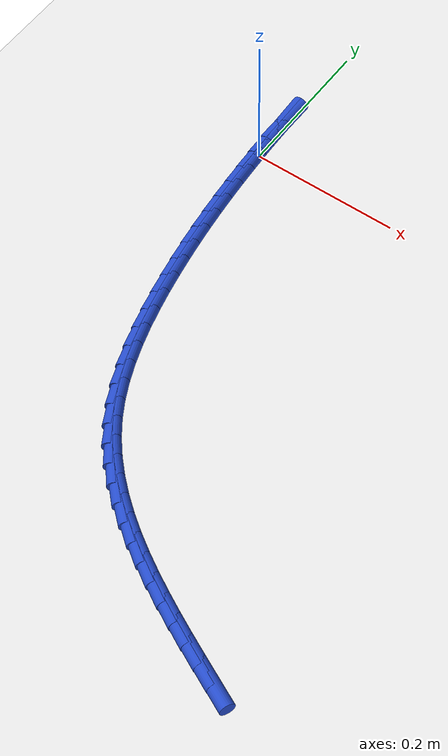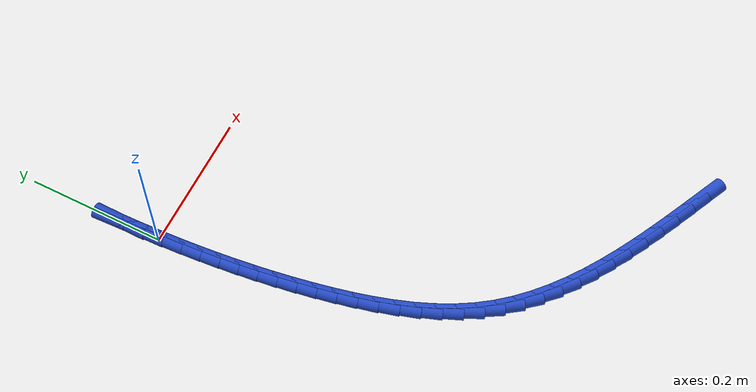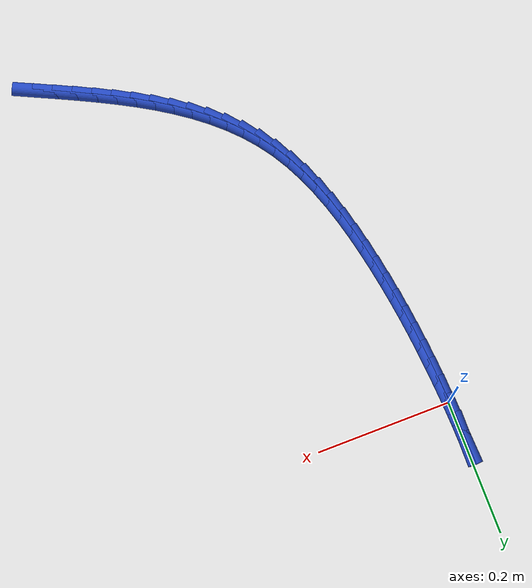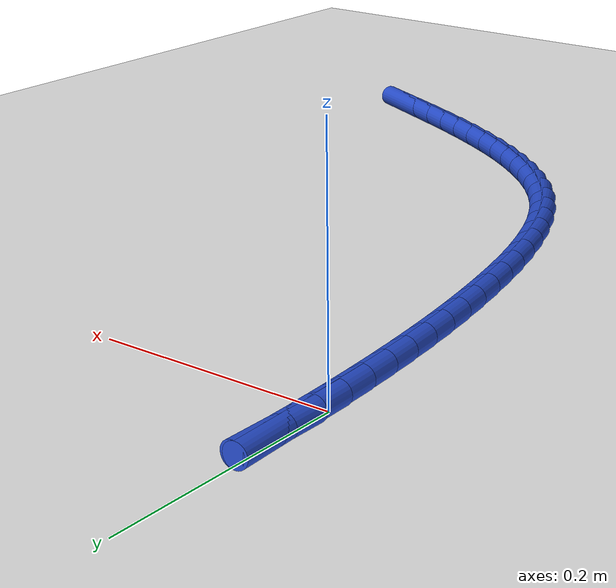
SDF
<sdf version="1.6">
 <world name="default">
  <model name="ground_plane">
   <static>1</static>
   <link name="link">
    <collision name="collision">
     <geometry><plane><normal>0 0 1</normal><size>100 100</size></plane></geometry>
     <surface><friction><ode><mu>100</mu><mu2>50</mu2></ode></friction></surface>
    </collision>
    <visual name="visual">
     <cast_shadows>0</cast_shadows>
     <geometry><plane><normal>0 0 1</normal><size>100 100</size></plane></geometry>
     <material>
      <script><uri>file://media/materials/scripts/gazebo.material</uri><name>Gazebo/WhiteGlow</name></script>
     </material>
    </visual>
   </link>
  </model>
  <model name="line">
   <link name="link_0">
    <pose>2.8189256484623115e-17 4.85722573273506e-17 0.01 0 1.57 -1.5270184267594702</pose>
    <collision name="collision">
     <geometry><cylinder><radius>0.01</radius><length>0.08</length></cylinder></geometry>
    </collision>
    <visual name="visual">
     <material>
      <script><name>Gazebo/Blue</name><uri>file://media/materials/scripts/gazebo.material</uri></script>
     </material>
     <geometry><cylinder><radius>0.01</radius><length>0.08</length></cylinder></geometry>
    </visual>
   </link>
   <link name="link_1">
    <pose>-0.0012457737586339022 0.028438500070601964 0.01 0 1.57 -1.5487521793531875</pose>
    <collision name="collision">
     <geometry><cylinder><radius>0.01</radius><length>0.08</length></cylinder></geometry>
    </collision>
    <visual name="visual">
     <material>
      <script><name>Gazebo/Blue</name><uri>file://media/materials/scripts/gazebo.material</uri></script>
     </material>
     <geometry><cylinder><radius>0.01</radius><length>0.08</length></cylinder></geometry>
    </visual>
   </link>
   <link name="link_2">
    <pose>-0.0018765141941405029 0.05704646804013525 0.01 0 1.57 1.5607097423569645</pose>
    <collision name="collision">
     <geometry><cylinder><radius>0.01</radius><length>0.08</length></cylinder></geometry>
    </collision>
    <visual name="visual">
     <material>
      <script><name>Gazebo/Blue</name><uri>file://media/materials/scripts/gazebo.material</uri></script>
     </material>
     <geometry><cylinder><radius>0.01</radius><length>0.08</length></cylinder></geometry>
    </visual>
   </link>
   <link name="link_251">
    <pose>0.38632357649512 -0.6376956373249678 0.01 0 1.57 -0.4434992929718177</pose>
    <collision name="collision">
     <geometry><cylinder><radius>0.01</radius><length>0.08</length></cylinder></geometry>
    </collision>
    <visual name="visual">
     <material>
      <script><name>Gazebo/Blue</name><uri>file://media/materials/scripts/gazebo.material</uri></script>
     </material>
     <geometry><cylinder><radius>0.01</radius><length>0.08</length></cylinder></geometry>
    </visual>
   </link>
   <link name="link_252">
    <pose>0.36007686523714955 -0.6252268102355137 0.01 0 1.57 -0.45106261564248634</pose>
    <collision name="collision">
     <geometry><cylinder><radius>0.01</radius><length>0.08</length></cylinder></geometry>
    </collision>
    <visual name="visual">
     <material>
      <script><name>Gazebo/Blue</name><uri>file://media/materials/scripts/gazebo.material</uri></script>
     </material>
     <geometry><cylinder><radius>0.01</radius><length>0.08</length></cylinder></geometry>
    </visual>
   </link>
   <link name="link_253">
    <pose>0.3340016185310652 -0.6125968392613319 0.01 0 1.57 -0.4642635062525587</pose>
    <collision name="collision">
     <geometry><cylinder><radius>0.01</radius><length>0.08</length></cylinder></geometry>
    </collision>
    <visual name="visual">
     <material>
      <script><name>Gazebo/Blue</name><uri>file://media/materials/scripts/gazebo.material</uri></script>
     </material>
     <geometry><cylinder><radius>0.01</radius><length>0.08</length></cylinder></geometry>
    </visual>
   </link>
   <link name="link_254">
    <pose>0.30823208439052474 -0.5996922268456354 0.01 0 1.57 -0.48328373977770445</pose>
    <collision name="collision">
     <geometry><cylinder><radius>0.01</radius><length>0.08</length></cylinder></geometry>
    </collision>
    <visual name="visual">
     <material>
      <script><name>Gazebo/Blue</name><uri>file://media/materials/scripts/gazebo.material</uri></script>
     </material>
     <geometry><cylinder><radius>0.01</radius><length>0.08</length></cylinder></geometry>
    </visual>
   </link>
   <link name="link_255">
    <pose>0.28290251082918655 -0.5863994754316376 0.01 0 1.57 -0.5083757652138824</pose>
    <collision name="collision">
     <geometry><cylinder><radius>0.01</radius><length>0.08</length></cylinder></geometry>
    </collision>
    <visual name="visual">
     <material>
      <script><name>Gazebo/Blue</name><uri>file://media/materials/scripts/gazebo.material</uri></script>
     </material>
     <geometry><cylinder><radius>0.01</radius><length>0.08</length></cylinder></geometry>
    </visual>
   </link>
   <link name="link_256">
    <pose>0.258147145860709 -0.5726050874625521 0.01 0 1.57 -0.5398498630471532</pose>
    <collision name="collision">
     <geometry><cylinder><radius>0.01</radius><length>0.08</length></cylinder></geometry>
    </collision>
    <visual name="visual">
     <material>
      <script><name>Gazebo/Blue</name><uri>file://media/materials/scripts/gazebo.material</uri></script>
     </material>
     <geometry><cylinder><radius>0.01</radius><length>0.08</length></cylinder></geometry>
    </visual>
   </link>
   <link name="link_257">
    <pose>0.2341002374987505 -0.5581955653815922 0.01 0 1.57 -0.5780524164308534</pose>
    <collision name="collision">
     <geometry><cylinder><radius>0.01</radius><length>0.08</length></cylinder></geometry>
    </collision>
    <visual name="visual">
     <material>
      <script><name>Gazebo/Blue</name><uri>file://media/materials/scripts/gazebo.material</uri></script>
     </material>
     <geometry><cylinder><radius>0.01</radius><length>0.08</length></cylinder></geometry>
    </visual>
   </link>
   <link name="link_258">
    <pose>0.21089603375696958 -0.5430574116319716 0.01 0 1.57 -0.6233312146883905</pose>
    <collision name="collision">
     <geometry><cylinder><radius>0.01</radius><length>0.08</length></cylinder></geometry>
    </collision>
    <visual name="visual">
     <material>
      <script><name>Gazebo/Blue</name><uri>file://media/materials/scripts/gazebo.material</uri></script>
     </material>
     <geometry><cylinder><radius>0.01</radius><length>0.08</length></cylinder></geometry>
    </visual>
   </link>
   <link name="link_259">
    <pose>0.18866878264902456 -0.5270771286569035 0.01 0 1.57 -0.6759833954840023</pose>
    <collision name="collision">
     <geometry><cylinder><radius>0.01</radius><length>0.08</length></cylinder></geometry>
    </collision>
    <visual name="visual">
     <material>
      <script><name>Gazebo/Blue</name><uri>file://media/materials/scripts/gazebo.material</uri></script>
     </material>
     <geometry><cylinder><radius>0.01</radius><length>0.08</length></cylinder></geometry>
    </visual>
   </link>
   <link name="link_260">
    <pose>0.1675527321885739 -0.5101412188996013 0.01 0 1.57 -0.7361828515151914</pose>
    <collision name="collision">
     <geometry><cylinder><radius>0.01</radius><length>0.08</length></cylinder></geometry>
    </collision>
    <visual name="visual">
     <material>
      <script><name>Gazebo/Blue</name><uri>file://media/materials/scripts/gazebo.material</uri></script>
     </material>
     <geometry><cylinder><radius>0.01</radius><length>0.08</length></cylinder></geometry>
    </visual>
   </link>
   <link name="link_261">
    <pose>0.1476821303892755 -0.4921361848032785 0.01 0 1.57 -0.8038880272511694</pose>
    <collision name="collision">
     <geometry><cylinder><radius>0.01</radius><length>0.08</length></cylinder></geometry>
    </collision>
    <visual name="visual">
     <material>
      <script><name>Gazebo/Blue</name><uri>file://media/materials/scripts/gazebo.material</uri></script>
     </material>
     <geometry><cylinder><radius>0.01</radius><length>0.08</length></cylinder></geometry>
    </visual>
   </link>
   <link name="link_262">
    <pose>0.12919122526478885 -0.47294852881114896 0.01 0 1.57 -0.8787392195501296</pose>
    <collision name="collision">
     <geometry><cylinder><radius>0.01</radius><length>0.08</length></cylinder></geometry>
    </collision>
    <visual name="visual">
     <material>
      <script><name>Gazebo/Blue</name><uri>file://media/materials/scripts/gazebo.material</uri></script>
     </material>
     <geometry><cylinder><radius>0.01</radius><length>0.08</length></cylinder></geometry>
    </visual>
   </link>
   <link name="link_263">
    <pose>0.11221426482877189 -0.4524647533664261 0.01 0 1.57 -0.9599581353060012</pose>
    <collision name="collision">
     <geometry><cylinder><radius>0.01</radius><length>0.08</length></cylinder></geometry>
    </collision>
    <visual name="visual">
     <material>
      <script><name>Gazebo/Blue</name><uri>file://media/materials/scripts/gazebo.material</uri></script>
     </material>
     <geometry><cylinder><radius>0.01</radius><length>0.08</length></cylinder></geometry>
    </visual>
   </link>
   <link name="link_264">
    <pose>0.09688535003637681 -0.43057153400054965 0.01 0 1.57 -1.0425890263048359</pose>
    <collision name="collision">
     <geometry><cylinder><radius>0.01</radius><length>0.08</length></cylinder></geometry>
    </collision>
    <visual name="visual">
     <material>
      <script><name>Gazebo/Blue</name><uri>file://media/materials/scripts/gazebo.material</uri></script>
     </material>
     <geometry><cylinder><radius>0.01</radius><length>0.08</length></cylinder></geometry>
    </visual>
   </link>
   <link name="link_265">
    <pose>0.08326938091238124 -0.40723699591169477 0.01 0 1.57 -1.1163218033586153</pose>
    <collision name="collision">
     <geometry><cylinder><radius>0.01</radius><length>0.08</length></cylinder></geometry>
    </collision>
    <visual name="visual">
     <material>
      <script><name>Gazebo/Blue</name><uri>file://media/materials/scripts/gazebo.material</uri></script>
     </material>
     <geometry><cylinder><radius>0.01</radius><length>0.08</length></cylinder></geometry>
    </visual>
   </link>
   <link name="link_266">
    <pose>0.07125184990737463 -0.382640427457957 0.01 0 1.57 -1.1801103559795192</pose>
    <collision name="collision">
     <geometry><cylinder><radius>0.01</radius><length>0.08</length></cylinder></geometry>
    </collision>
    <visual name="visual">
     <material>
      <script><name>Gazebo/Blue</name><uri>file://media/materials/scripts/gazebo.material</uri></script>
     </material>
     <geometry><cylinder><radius>0.01</radius><length>0.08</length></cylinder></geometry>
    </visual>
   </link>
   <link name="link_267">
    <pose>0.06068955534518425 -0.35699489005581964 0.01 0 1.57 -1.2347354549522223</pose>
    <collision name="collision">
     <geometry><cylinder><radius>0.01</radius><length>0.08</length></cylinder></geometry>
    </collision>
    <visual name="visual">
     <material>
      <script><name>Gazebo/Blue</name><uri>file://media/materials/scripts/gazebo.material</uri></script>
     </material>
     <geometry><cylinder><radius>0.01</radius><length>0.08</length></cylinder></geometry>
    </visual>
   </link>
   <link name="link_268">
    <pose>0.05143929554963738 -0.33051344512176606 0.01 0 1.57 -1.281028077027675</pose>
    <collision name="collision">
     <geometry><cylinder><radius>0.01</radius><length>0.08</length></cylinder></geometry>
    </collision>
    <visual name="visual">
     <material>
      <script><name>Gazebo/Blue</name><uri>file://media/materials/scripts/gazebo.material</uri></script>
     </material>
     <geometry><cylinder><radius>0.01</radius><length>0.08</length></cylinder></geometry>
    </visual>
   </link>
   <link name="link_269">
    <pose>0.04335786884456131 -0.30340915407227964 0.01 0 1.57 -1.3197628088795517</pose>
    <collision name="collision">
     <geometry><cylinder><radius>0.01</radius><length>0.08</length></cylinder></geometry>
    </collision>
    <visual name="visual">
     <material>
      <script><name>Gazebo/Blue</name><uri>file://media/materials/scripts/gazebo.material</uri></script>
     </material>
     <geometry><cylinder><radius>0.01</radius><length>0.08</length></cylinder></geometry>
    </visual>
   </link>
   <link name="link_270">
    <pose>0.03630207355378311 -0.27589507832384264 0.01 0 1.57 -1.3515975046287905</pose>
    <collision name="collision">
     <geometry><cylinder><radius>0.01</radius><length>0.08</length></cylinder></geometry>
    </collision>
    <visual name="visual">
     <material>
      <script><name>Gazebo/Blue</name><uri>file://media/materials/scripts/gazebo.material</uri></script>
     </material>
     <geometry><cylinder><radius>0.01</radius><length>0.08</length></cylinder></geometry>
    </visual>
   </link>
   <link name="link_271">
    <pose>0.030128708001130444 -0.24818427929294024 0.01 0 1.57 -1.3770408060778632</pose>
    <collision name="collision">
     <geometry><cylinder><radius>0.01</radius><length>0.08</length></cylinder></geometry>
    </collision>
    <visual name="visual">
     <material>
      <script><name>Gazebo/Blue</name><uri>file://media/materials/scripts/gazebo.material</uri></script>
     </material>
     <geometry><cylinder><radius>0.01</radius><length>0.08</length></cylinder></geometry>
    </visual>
   </link>
   <link name="link_272">
    <pose>0.02469457757381411 -0.22048979944331332 0.01 0 1.57 -1.3975707433384945</pose>
    <collision name="collision">
     <geometry><cylinder><radius>0.01</radius><length>0.08</length></cylinder></geometry>
    </collision>
    <visual name="visual">
     <material>
      <script><name>Gazebo/Blue</name><uri>file://media/materials/scripts/gazebo.material</uri></script>
     </material>
     <geometry><cylinder><radius>0.01</radius><length>0.08</length></cylinder></geometry>
    </visual>
   </link>
   <link name="link_273">
    <pose>0.019878442375610126 -0.19296577150291203 0.01 0 1.57 -1.416890972133112</pose>
    <collision name="collision">
     <geometry><cylinder><radius>0.01</radius><length>0.08</length></cylinder></geometry>
    </collision>
    <visual name="visual">
     <material>
      <script><name>Gazebo/Blue</name><uri>file://media/materials/scripts/gazebo.material</uri></script>
     </material>
     <geometry><cylinder><radius>0.01</radius><length>0.08</length></cylinder></geometry>
    </visual>
   </link>
   <link name="link_274">
    <pose>0.015629580480593614 -0.16557711168274386 0.01 0 1.57 -1.4355607695790278</pose>
    <collision name="collision">
     <geometry><cylinder><radius>0.01</radius><length>0.08</length></cylinder></geometry>
    </collision>
    <visual name="visual">
     <material>
      <script><name>Gazebo/Blue</name><uri>file://media/materials/scripts/gazebo.material</uri></script>
     </material>
     <geometry><cylinder><radius>0.01</radius><length>0.08</length></cylinder></geometry>
    </visual>
   </link>
   <link name="link_275">
    <pose>0.011911399951667586 -0.1382508220669762 0.01 0 1.57 -1.4533995495077747</pose>
    <collision name="collision">
     <geometry><cylinder><radius>0.01</radius><length>0.08</length></cylinder></geometry>
    </collision>
    <visual name="visual">
     <material>
      <script><name>Gazebo/Blue</name><uri>file://media/materials/scripts/gazebo.material</uri></script>
     </material>
     <geometry><cylinder><radius>0.01</radius><length>0.08</length></cylinder></geometry>
    </visual>
   </link>
   <link name="link_276">
    <pose>0.00868730885173505 -0.11091390473977633 0.01 0 1.57 -1.4702416892901813</pose>
    <collision name="collision">
     <geometry><cylinder><radius>0.01</radius><length>0.08</length></cylinder></geometry>
    </collision>
    <visual name="visual">
     <material>
      <script><name>Gazebo/Blue</name><uri>file://media/materials/scripts/gazebo.material</uri></script>
     </material>
     <geometry><cylinder><radius>0.01</radius><length>0.08</length></cylinder></geometry>
    </visual>
   </link>
   <link name="link_277">
    <pose>0.0059207152436990245 -0.0834933617853116 0.01 0 1.57 -1.4859415092457275</pose>
    <collision name="collision">
     <geometry><cylinder><radius>0.01</radius><length>0.08</length></cylinder></geometry>
    </collision>
    <visual name="visual">
     <material>
      <script><name>Gazebo/Blue</name><uri>file://media/materials/scripts/gazebo.material</uri></script>
     </material>
     <geometry><cylinder><radius>0.01</radius><length>0.08</length></cylinder></geometry>
    </visual>
   </link>
   <link name="link_278">
    <pose>0.0035750271904625122 -0.05591619528774925 0.01 0 1.57 -1.5003771433576731</pose>
    <collision name="collision">
     <geometry><cylinder><radius>0.01</radius><length>0.08</length></cylinder></geometry>
    </collision>
    <visual name="visual">
     <material>
      <script><name>Gazebo/Blue</name><uri>file://media/materials/scripts/gazebo.material</uri></script>
     </material>
     <geometry><cylinder><radius>0.01</radius><length>0.08</length></cylinder></geometry>
    </visual>
   </link>
   <link name="link_279">
    <pose>0.0016136527549284745 -0.028109407331255745 0.01 0 1.57 -1.5134531159078513</pose>
    <collision name="collision">
     <geometry><cylinder><radius>0.01</radius><length>0.08</length></cylinder></geometry>
    </collision>
    <visual name="visual">
     <material>
      <script><name>Gazebo/Blue</name><uri>file://media/materials/scripts/gazebo.material</uri></script>
     </material>
     <geometry><cylinder><radius>0.01</radius><length>0.08</length></cylinder></geometry>
    </visual>
   </link>
   <link name="link_280">
    <pose>3.7838655819744105e-17 -1.1102230246251565e-16 0.01 0 1.57 -1.5251015681733613</pose>
    <collision name="collision">
     <geometry><cylinder><radius>0.01</radius><length>0.08</length></cylinder></geometry>
    </collision>
    <visual name="visual">
     <material>
      <script><name>Gazebo/Blue</name><uri>file://media/materials/scripts/gazebo.material</uri></script>
     </material>
     <geometry><cylinder><radius>0.01</radius><length>0.08</length></cylinder></geometry>
    </visual>
   </link>
   <link name="link_281">
    <pose>-0.0013025230114198506 0.028485024621851207 0.01 0 1.57 -1.5352821988965186</pose>
    <collision name="collision">
     <geometry><cylinder><radius>0.01</radius><length>0.08</length></cylinder></geometry>
    </collision>
    <visual name="visual">
     <material>
      <script><name>Gazebo/Blue</name><uri>file://media/materials/scripts/gazebo.material</uri></script>
     </material>
     <geometry><cylinder><radius>0.01</radius><length>0.08</length></cylinder></geometry>
    </visual>
   </link>
   <link name="link_282">
    <pose>-0.0023305082164281833 0.05741866445013093 0.01 0 1.57 -1.5302306021458048</pose>
    <collision name="collision">
     <geometry><cylinder><radius>0.01</radius><length>0.08</length></cylinder></geometry>
    </collision>
    <visual name="visual">
     <material>
      <script><name>Gazebo/Blue</name><uri>file://media/materials/scripts/gazebo.material</uri></script>
     </material>
     <geometry><cylinder><radius>0.01</radius><length>0.08</length></cylinder></geometry>
    </visual>
   </link>
  </model>
 </world>
</sdf>
